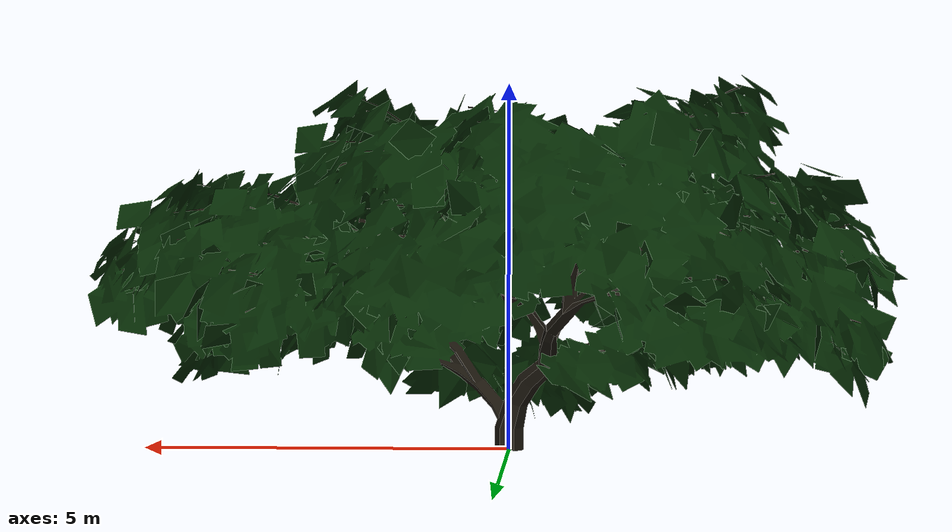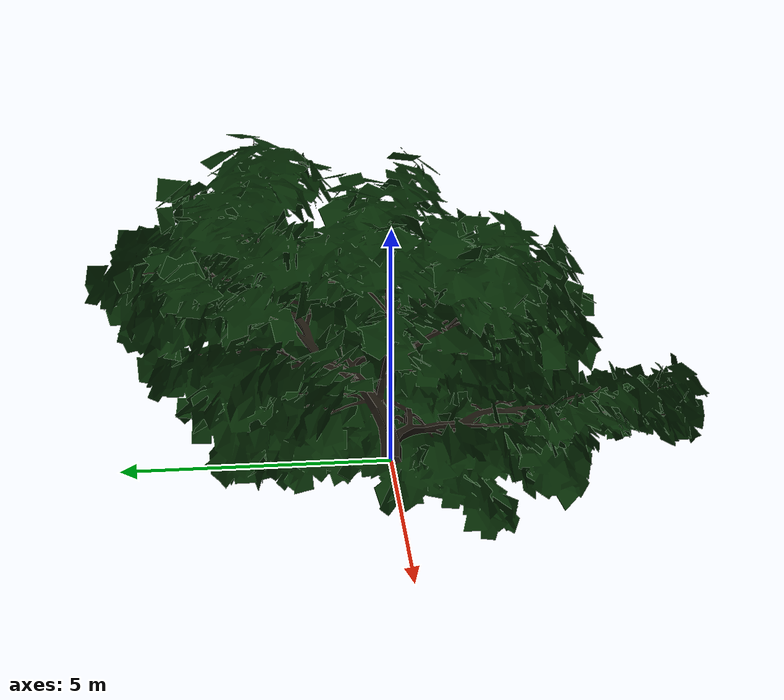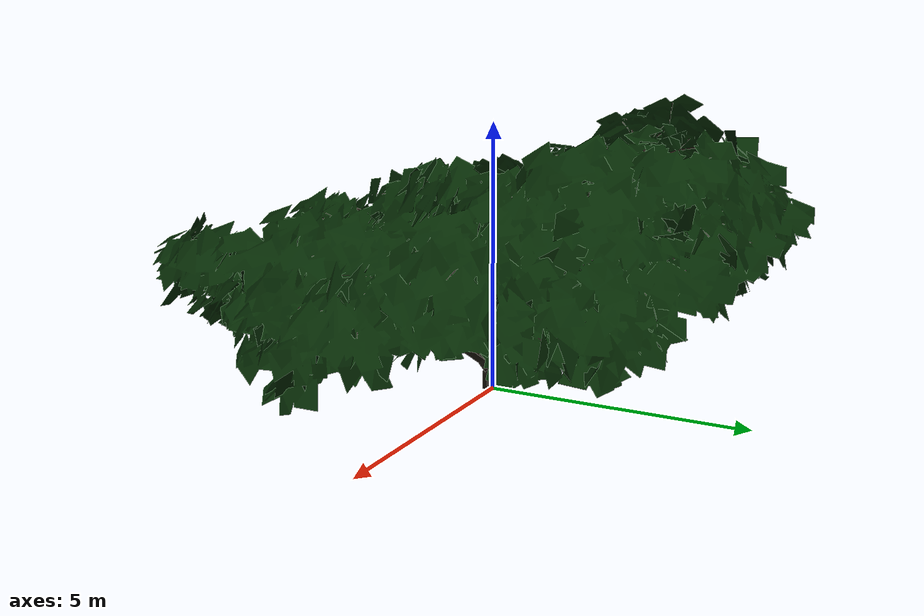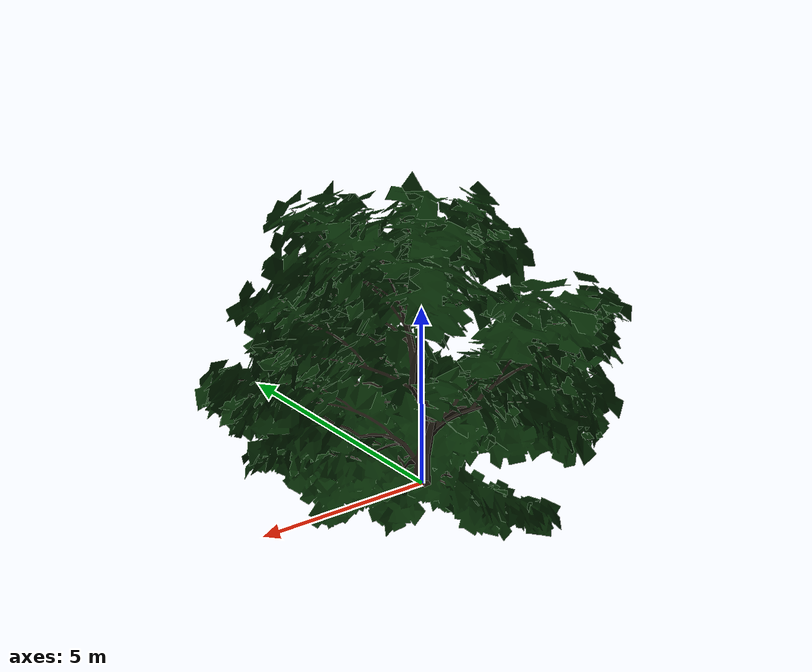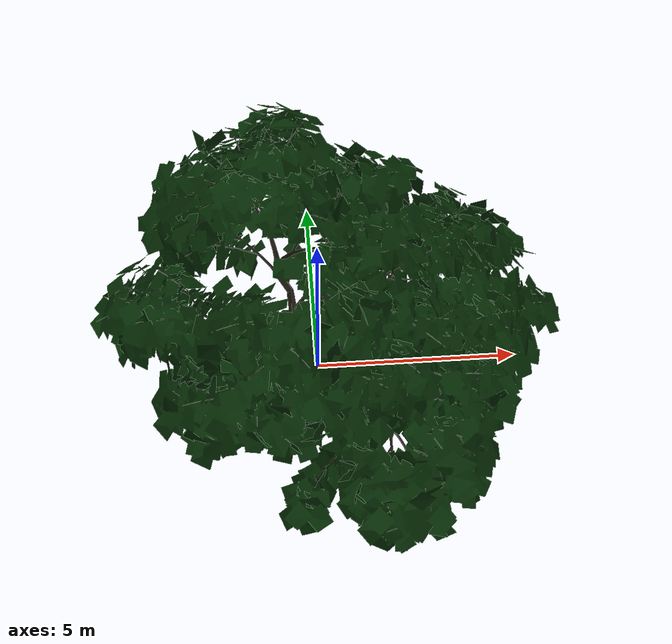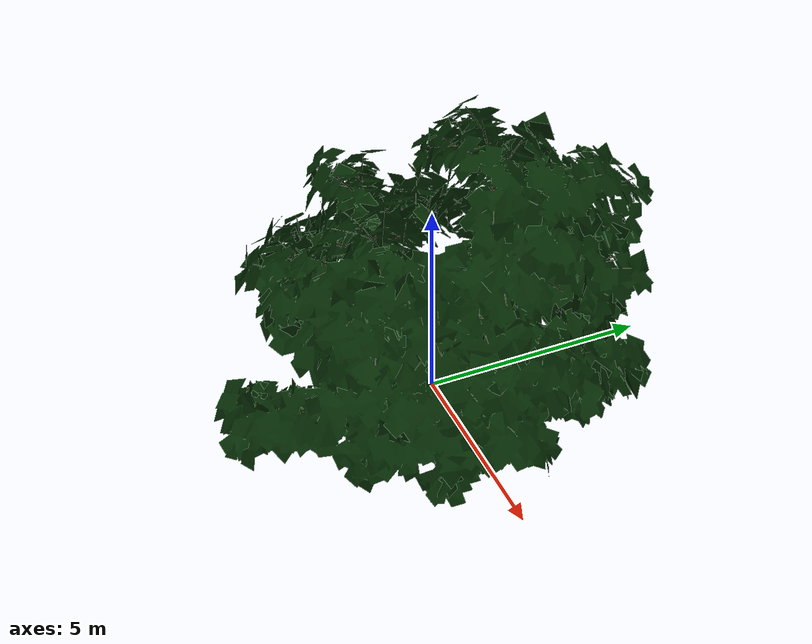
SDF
<?xml version="1.0" ?>
<sdf version="1.4">
    <model name="Testing_Grounds_tree">
        <static>true</static>
        <link name="Testing_Grounds_trees">
            <pose>0 0 0 0 0 0</pose>
            <collision name="Testing_Grounds_tree_collision">
                <geometry>
                    <mesh>
                        <uri>model://Testing_grounds_tree/meshes/testing_grounds_tree.dae</uri>
                    </mesh>
                </geometry>
            </collision>
            <visual name="Testing_Grounds_treesvisual">
                <geometry>
                    <mesh>
                        <uri>model://Testing_grounds_tree/meshes/testing_grounds_tree.dae</uri>
                    </mesh>
                </geometry>
            </visual>
        </link>
    </model>
</sdf>
